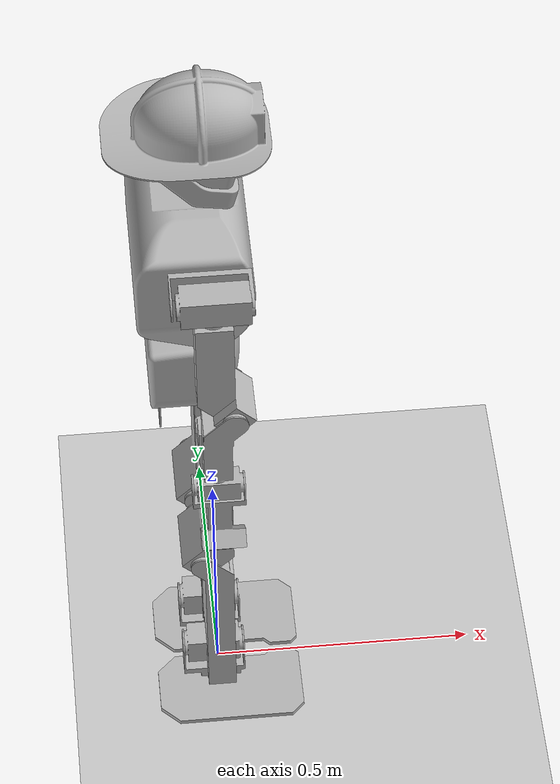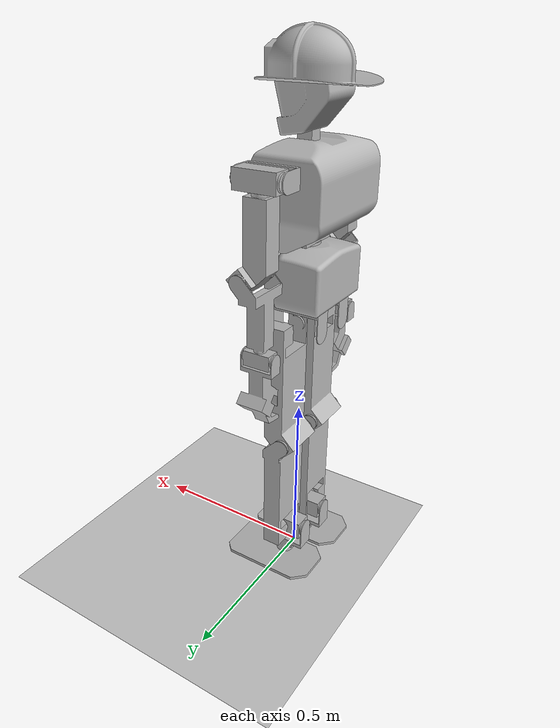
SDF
<?xml version="1.0" ?>
<sdf version="1.4">
<world name="default">

<plugin name="gz_world_manager" filename="libgz_world_manager.so" />

<physics type="ode">
	<gravity>0 0 -9.81</gravity>
	<ode>
		<solver>
			<type>quick</type>
			<iters>90</iters>
			<sor>1.2</sor>
		</solver>
		<constraints>
			<cfm>0.0</cfm>
			<erp>0.2</erp>
			<contact_max_correcting_vel>100.0</contact_max_correcting_vel>
			<contact_surface_layer>0.0</contact_surface_layer>
		</constraints>
	</ode>
	<real_time_update_rate>-1</real_time_update_rate>
	<max_step_size>0.000334</max_step_size>
</physics>

<!-- A ground plane -->
<include>
  <uri>model://ground_plane</uri>
</include>

<!-- A global light source -->
<include>
  <uri>model://sun</uri>
</include>

<include>
  <uri>model://thor_op</uri>
</include>

</world>
</sdf>

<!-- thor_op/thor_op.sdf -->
<!-- THOR-OP model script -->
<sdf version="1.4">
    <model name="thor_op">
        <plugin name="gz_comms_manager" filename="libgz_comms_manager.so" />

        <!-- head -->
        <link name="head">
            <pose>0 0 1.419 0 0 0</pose>
            <inertial>
                <mass>0.1</mass>
                <inertia>
                    <ixx>1.0</ixx>
                    <ixy>0.0</ixy>
                    <ixz>0.0</ixz>
                    <iyy>1.0</iyy>
                    <iyz>0.0</iyz>
                    <izz>1.0</izz>
                </inertia>
            </inertial>
            <collision name="head_collision">
                <pose>0 0 0 1.57 0 -1.57</pose>
                <geometry>
                    <mesh>
                        <uri>model://thor_op/meshes/head.stl</uri>
                        <scale>0.001 0.001 0.001</scale>
                    </mesh>
                </geometry>
            </collision>
            <visual name="head_visual">
                <pose>0 0 0 1.57 0 -1.57</pose>
                <geometry>
                    <mesh>
                        <uri>model://thor_op/meshes/head.stl</uri>
                        <scale>0.001 0.001 0.001</scale>
                    </mesh>
                </geometry>
            </visual>
        </link>

        <!-- neck -->
        <link name="neck">
            <pose>0 0 1.419 0 0 0</pose>
            <inertial>
                <mass>0.1</mass>
                <inertia>
                    <ixx>1.0</ixx>
                    <ixy>0.0</ixy>
                    <ixz>0.0</ixz>
                    <iyy>1.0</iyy>
                    <iyz>0.0</iyz>
                    <izz>1.0</izz>
                </inertia>
            </inertial>
            <collision name="neck_collision">
                <pose>0 0 -0.020 -1.57 0 0</pose>
                <geometry>
                    <mesh>
                        <uri>model://thor_op/meshes/neck.stl</uri>
                        <scale>0.001 0.001 0.001</scale>
                    </mesh>
                </geometry>
            </collision>
            <visual name="neck_visual">
                <pose>0 0 -0.020 -1.57 0 0</pose>
                <geometry>
                    <mesh>
                        <uri>model://thor_op/meshes/neck.stl</uri>
                        <scale>0.001 0.001 0.001</scale>
                    </mesh>
                </geometry>
            </visual>
        </link>

        <!-- main case -->
        <link name="main_case">
            <pose>0 0 1.222 0 0 0</pose>
            <inertial>
                <mass>.1</mass>
                <inertia>
                    <ixx>1.0</ixx>
                    <ixy>0.0</ixy>
                    <ixz>0.0</ixz>
                    <iyy>1.0</iyy>
                    <iyz>0.0</iyz>
                    <izz>1.0</izz>
                </inertia>
            </inertial>
            <collision name="main_case_collision">
                <pose>0 0 0 1.57 0 1.57</pose>
                <geometry>
                    <mesh>
                        <uri>model://thor_op/meshes/chest.stl</uri>
                        <scale>0.001 0.001 0.001</scale>
                    </mesh>
                </geometry>
            </collision>
            <visual name="main_case_visual">
                <pose>0 0 0 1.57 0 1.57</pose>
                <geometry>
                    <mesh>
                        <uri>model://thor_op/meshes/chest.stl</uri>
                        <scale>0.001 0.001 0.001</scale>
                    </mesh>
                </geometry>
            </visual>
            <sensor name="lidar_sensor1" type="ray">
                <!-- Hokuyo UTM-30LX-EW -->
                <always_on>1</always_on>
                <update_rate>10</update_rate>
                <pose>.0565 0 1.277 0 0 0</pose>
                <ray>
                    <scan>
                        <horizontal>
                            <samples>1081</samples>
                            <resolution>1</resolution>
                            <min_angle>-2.35619449</min_angle>
                            <max_angle>2.35619449</max_angle>
                        </horizontal>
                    </scan>
                    <range>
                        <min>.1</min>
                        <max>30</max>
                        <resolution>.05</resolution>
                    </range>
                </ray>
                <plugin name="gz_lidar_dump" filename="libgz_lidar_dump.so" />
            </sensor>
            <sensor name="camera_sensor1" type="camera">
                <pose>0 0 0.5 0 0 1.57</pose>
                <camera>
                    <horizontal_fov>1.57</horizontal_fov>
                    <image>
                        <width>640</width>
                        <height>480</height>
                        <format>R8G8B8</format>
                    </image>
                    <clip>
                        <near>0.5</near>
                        <far>5</far>
                    </clip>
                </camera>
                <plugin name="gz_camera_dump" filename="libgz_camera_dump.so" />
                <always_on>1</always_on>
                <update_rate>10</update_rate>
            </sensor>
        </link>

        <!-- torso pitch servo -->
        <link name="torso_pitch_servo">
            <pose>0 0 1.060 0 0 0</pose>
            <inertial>
                <mass>.1</mass>
                <inertia>
                    <ixx>1.0</ixx>
                    <ixy>0.0</ixy>
                    <ixz>0.0</ixz>
                    <iyy>1.0</iyy>
                    <iyz>0.0</iyz>
                    <izz>1.0</izz>
                </inertia>
            </inertial>
            <collision name="torso_pitch_servo_collision">
                <pose>0 0 -0.038 -1.57 0 1.57</pose>
                <geometry>
                    <mesh>
                        <uri>model://thor_op/meshes/torso_pitch_servo.stl</uri>
                        <scale>0.001 0.001 0.001</scale>
                    </mesh>
                </geometry>
            </collision>
            <visual name="torso_pitch_servo_visual">
                <pose>0 0 -0.038 1.57 0 1.57</pose>
                <geometry>
                    <mesh>
                        <uri>model://thor_op/meshes/torso_pitch_servo.stl</uri>
                        <scale>0.001 0.001 0.001</scale>
                    </mesh>
                </geometry>
            </visual>
        </link>

        <!-- torso -->
        <link name="torso">
            <pose>0 0 1.022 0 0 0</pose>
            <inertial>
                <mass>.2</mass>
                <inertia>
                    <ixx>1.0</ixx>
                    <ixy>0.0</ixy>
                    <ixz>0.0</ixz>
                    <iyy>1.0</iyy>
                    <iyz>0.0</iyz>
                    <izz>1.0</izz>
                </inertia>
            </inertial>
            <collision name="torso_collision">
                <pose>0 0 -0.086 1.57 0 1.57</pose>
                <geometry>
                    <mesh>
                        <uri>model://thor_op/meshes/pelvis.stl</uri>
                        <scale>0.001 0.001 0.001</scale>
                    </mesh>
                </geometry>
            </collision>
            <visual name="torso_pelvis_visual">
                <pose>0 0 -0.086 1.57 0 1.57</pose>
                <geometry>
                    <mesh>
                        <uri>model://thor_op/meshes/pelvis.stl</uri>
                        <scale>0.001 0.001 0.001</scale>
                    </mesh>
                </geometry>
            </visual>
            <sensor name="imu_sensor" type="imu">
                <always_on>1</always_on>
                <visualize>1</visualize>
                <topic>imu_sensor</topic>
            </sensor>
        </link>

        <!-- left shoulder pitch -->
        <link name="left_shoulder_pitch">
            <pose>0 .216 1.222 0 0 0</pose>
            <inertial>
                <mass>.1</mass>
                <inertia>
                    <ixx>1.0</ixx>
                    <ixy>0.0</ixy>
                    <ixz>0.0</ixz>
                    <iyy>1.0</iyy>
                    <iyz>0.0</iyz>
                    <izz>1.0</izz>
                </inertia>
            </inertial>
            <collision name="left_shoulder_pitch_collision">
                <pose>0 -0.055 0 3.14 -1.57 0</pose>
                <geometry>
                    <mesh>
                        <uri>model://thor_op/meshes/left_shoulder_pitch.stl</uri>
                        <scale>0.001 0.001 0.001</scale>
                    </mesh>
                </geometry>
            </collision>
            <visual name="left_shoulder_pitch_visual">
                <pose>0 -0.055 0 3.14 -1.57 0</pose>
                <geometry>
                    <mesh>
                        <uri>model://thor_op/meshes/left_shoulder_pitch.stl</uri>
                        <scale>0.001 0.001 0.001</scale>
                    </mesh>
                </geometry>
            </visual>
        </link>

        <!-- right shoulder pitch -->
        <link name="right_shoulder_pitch">
            <pose>0 -.216 1.222 0 0 0</pose>
            <inertial>
                <mass>.1</mass>
                <inertia>
                    <ixx>1.0</ixx>
                    <ixy>0.0</ixy>
                    <ixz>0.0</ixz>
                    <iyy>1.0</iyy>
                    <iyz>0.0</iyz>
                    <izz>1.0</izz>
                </inertia>
            </inertial>
            <collision name="right_shoulder_pitch_collision">
                <pose>0 0.055 0 3.14 -1.57 3.14</pose>
                <geometry>
                    <mesh>
                        <uri>model://thor_op/meshes/right_shoulder_pitch.stl</uri>
                        <scale>0.001 0.001 0.001</scale>
                    </mesh>
                </geometry>
            </collision>
            <visual name="right_shoulder_pitch_visual">
                <pose>0 0.055 0 3.14 -1.57 3.14</pose>
                <geometry>
                    <mesh>
                        <uri>model://thor_op/meshes/right_shoulder_pitch.stl</uri>
                        <scale>0.001 0.001 0.001</scale>
                    </mesh>
                </geometry>
            </visual>
        </link>

        <!-- left shoulder roll -->
        <link name="left_shoulder_roll">
            <pose>0 .216 1.222 0 0 0</pose>
            <inertial>
                <mass>.1</mass>
                <inertia>
                    <ixx>1.0</ixx>
                    <ixy>0.0</ixy>
                    <ixz>0.0</ixz>
                    <iyy>1.0</iyy>
                    <iyz>0.0</iyz>
                    <izz>1.0</izz>
                </inertia>
            </inertial>
            <collision name="left_shoulder_roll_collision">
                <pose>0.030 0 0 1.57 0 1.57</pose>
                <geometry>
                    <mesh>
                        <uri>model://thor_op/meshes/left_shoulder_roll.stl</uri>
                        <scale>0.001 0.001 0.001</scale>
                    </mesh>
                </geometry>
            </collision>
            <visual name="left_shoulder_roll_visual">
                <pose>0.030 0 0 1.57 0 1.57</pose>
                <geometry>
                    <mesh>
                        <uri>model://thor_op/meshes/left_shoulder_roll.dae</uri>
                        <scale>0.001 0.001 0.001</scale>
                    </mesh>
                </geometry>
            </visual>
        </link>

        <!-- right shoulder roll -->
        <link name="right_shoulder_roll">
            <pose>0 -.216 1.222 0 0 0</pose>
            <inertial>
                <mass>.1</mass>
                <inertia>
                    <ixx>1.0</ixx>
                    <ixy>0.0</ixy>
                    <ixz>0.0</ixz>
                    <iyy>1.0</iyy>
                    <iyz>0.0</iyz>
                    <izz>1.0</izz>
                </inertia>
            </inertial>
            <collision name="right_shoulder_roll_collision">
                <pose>0.030 0 0 1.57 0 -1.57</pose>
                <geometry>
                    <mesh>
                        <uri>model://thor_op/meshes/right_shoulder_roll.stl</uri>
                        <scale>0.001 0.001 0.001</scale>
                    </mesh>
                </geometry>
            </collision>
            <visual name="right_shoulder_roll_visual">
                <pose>0.030 0 0 1.57 0 -1.57</pose>
                <geometry>
                    <mesh>
                        <uri>model://thor_op/meshes/right_shoulder_roll.stl</uri>
                        <scale>0.001 0.001 0.001</scale>
                    </mesh>
                </geometry>
            </visual>
        </link>

        <!-- left upper arm -->
        <link name="left_upper_arm">
            <pose>0 .216 1.222 0 0 0</pose>
            <inertial>
                <mass>.1</mass>
                <inertia>
                    <ixx>1.0</ixx>
                    <ixy>0.0</ixy>
                    <ixz>0.0</ixz>
                    <iyy>1.0</iyy>
                    <iyz>0.0</iyz>
                    <izz>1.0</izz>
                </inertia>
            </inertial>
            <collision name="left_upper_arm_collision">
                <pose>0 0 -.025 1.57 0 1.57</pose>
                <geometry>
                    <mesh>
                        <uri>model://thor_op/meshes/left_shoulder_yaw.stl</uri>
                        <scale>0.001 0.001 0.001</scale>
                    </mesh>
                </geometry>
            </collision>
            <visual name="left_upper_arm_visual">
                <pose>0 0 -.025 1.57 0 1.57</pose>
                <geometry>
                    <mesh>
                        <uri>model://thor_op/meshes/left_shoulder_yaw.stl</uri>
                        <scale>0.001 0.001 0.001</scale>
                    </mesh>
                </geometry>
            </visual>
        </link>

        <!-- right upper arm -->
        <link name="right_upper_arm">
            <pose>0 -.216 1.222 0 0 0</pose>
            <inertial>
                <mass>.1</mass>
                <inertia>
                    <ixx>1.0</ixx>
                    <ixy>0.0</ixy>
                    <ixz>0.0</ixz>
                    <iyy>1.0</iyy>
                    <iyz>0.0</iyz>
                    <izz>1.0</izz>
                </inertia>
            </inertial>
            <collision name="right_upper_arm_collision">
                <pose>0 0 -.025 1.57 0 -1.57</pose>
                <geometry>
                    <mesh>
                        <uri>model://thor_op/meshes/right_shoulder_yaw.stl</uri>
                        <scale>0.001 0.001 0.001</scale>
                    </mesh>
                </geometry>
            </collision>
            <visual name="right_upper_arm_visual">
                <pose>0 0 -.025 1.57 0 -1.57</pose>
                <geometry>
                    <mesh>
                        <uri>model://thor_op/meshes/right_shoulder_yaw.stl</uri>
                        <scale>0.001 0.001 0.001</scale>
                    </mesh>
                </geometry>
            </visual>
        </link>

        <!-- left lower arm -->
        <link name="left_lower_arm">
            <pose>0 .216 .976 0 0 0</pose>
            <inertial>
                <mass>.1</mass>
                <inertia>
                    <ixx>1.0</ixx>
                    <ixy>0.0</ixy>
                    <ixz>0.0</ixz>
                    <iyy>1.0</iyy>
                    <iyz>0.0</iyz>
                    <izz>1.0</izz>
                </inertia>
            </inertial>
            <collision name="left_lower_arm_collision">
                <pose>0 0 0 1.57 0 1.57</pose>
                <geometry>
                    <mesh>
                        <uri>model://thor_op/meshes/left_arm_elbow.stl</uri>
                        <scale>0.001 0.001 0.001</scale>
                    </mesh>
                </geometry>
            </collision>
            <visual name="left_lower_arm_visual">
                <pose>0 0 0 1.57 0 1.57</pose>
                <geometry>
                    <mesh>
                        <uri>model://thor_op/meshes/left_arm_elbow.stl</uri>
                        <scale>0.001 0.001 0.001</scale>
                    </mesh>
                </geometry>
            </visual>
        </link>

        <!-- right lower arm -->
        <link name="right_lower_arm">
            <pose>0 -.216 .976 0 0 0</pose>
            <inertial>
                <mass>.1</mass>
                <inertia>
                    <ixx>1.0</ixx>
                    <ixy>0.0</ixy>
                    <ixz>0.0</ixz>
                    <iyy>1.0</iyy>
                    <iyz>0.0</iyz>
                    <izz>1.0</izz>
                </inertia>
            </inertial>
            <collision name="right_lower_arm_collision">
                <pose>0 0 0 1.57 0 -1.57</pose>
                <geometry>
                    <mesh>
                        <uri>model://thor_op/meshes/right_arm_elb_mir.stl</uri>
                        <scale>0.001 0.001 0.001</scale>
                    </mesh>
                </geometry>
            </collision>
            <visual name="right_lower_arm_visual">
                <pose>0 0 0 1.57 0 -1.57</pose>
                <geometry>
                    <mesh>
                        <uri>model://thor_op/meshes/right_arm_elb_mir.stl</uri>
                        <scale>0.001 0.001 0.001</scale>
                    </mesh>
                </geometry>
            </visual>
        </link>

        <!-- left wrist -->
        <link name="left_wrist">
            <pose>0 .216 .760 0 0 0</pose>
            <inertial>
                <mass>.1</mass>
                <inertia>
                    <ixx>1.0</ixx>
                    <ixy>0.0</ixy>
                    <ixz>0.0</ixz>
                    <iyy>1.0</iyy>
                    <iyz>0.0</iyz>
                    <izz>1.0</izz>
                </inertia>
            </inertial>
            <collision name="left_wrist_collision">
                <pose>0 0 0 1.57 0 1.57</pose>
                <geometry>
                    <mesh>
                        <uri>model://thor_op/meshes/left_wrist_yaw.stl</uri>
                        <scale>0.001 0.001 0.001</scale>
                    </mesh>
                </geometry>
            </collision>
            <visual name="left_wrist_visual">
                <pose>0 0 0 1.57 0 1.57</pose>
                <geometry>
                    <mesh>
                        <uri>model://thor_op/meshes/left_wrist_yaw.stl</uri>
                        <scale>0.001 0.001 0.001</scale>
                    </mesh>
                </geometry>
            </visual>
        </link>

        <!-- right wrist -->
        <link name="right_wrist">
            <pose>0 -.216 .760 0 0 0</pose>
            <inertial>
                <mass>.1</mass>
                <inertia>
                    <ixx>1.0</ixx>
                    <ixy>0.0</ixy>
                    <ixz>0.0</ixz>
                    <iyy>1.0</iyy>
                    <iyz>0.0</iyz>
                    <izz>1.0</izz>
                </inertia>
            </inertial>
            <collision name="right_wrist_collision">
                <pose>0 0 0 1.57 0 -1.57</pose>
                <geometry>
                    <mesh>
                        <uri>model://thor_op/meshes/right_wrist_yaw.stl</uri>
                        <scale>0.001 0.001 0.001</scale>
                    </mesh>
                </geometry>
            </collision>
            <visual name="right_wrist_visual">
                <pose>0 0 0 1.57 0 -1.57</pose>
                <geometry>
                    <mesh>
                        <uri>model://thor_op/meshes/right_wrist_yaw.stl</uri>
                        <scale>0.001 0.001 0.001</scale>
                    </mesh>
                </geometry>
            </visual>
        </link>

        <!--left gripper-->
        <link name="left_gripper">
            <pose>0 .216 .760 0 0 0</pose>
            <inertial>
                <mass>.1</mass>
                <inertia>
                    <ixx>1.0</ixx>
                    <ixy>0.0</ixy>
                    <ixz>0.0</ixz>
                    <iyy>1.0</iyy>
                    <iyz>0.0</iyz>
                    <izz>1.0</izz>
                </inertia>
            </inertial>
            <collision name="left_gripper_collision">
                <pose>0 0 0 1.57 0 1.57</pose>
                <geometry>
                    <mesh>
                        <uri>model://thor_op/meshes/left_wrist_roll.stl</uri>
                        <scale>0.001 0.001 0.001</scale>
                    </mesh>
                </geometry>
            </collision>
            <visual name="left_gripper_visual">
                <pose>0 0 0 1.57 0 1.57</pose>
                <geometry>
                    <mesh>
                        <uri>model://thor_op/meshes/left_wrist_roll.stl</uri>
                        <scale>0.001 0.001 0.001</scale>
                    </mesh>
                </geometry>
            </visual>
        </link>

        <!--right gripper-->
        <link name="right_gripper">
            <pose>0 -.216 .760 0 0 0</pose>
            <inertial>
                <mass>.1</mass>
                <inertia>
                    <ixx>1.0</ixx>
                    <ixy>0.0</ixy>
                    <ixz>0.0</ixz>
                    <iyy>1.0</iyy>
                    <iyz>0.0</iyz>
                    <izz>1.0</izz>
                </inertia>
            </inertial>
            <collision name="right_gripper_collision">
                <pose>0 0 0 1.57 0 -1.57</pose>
                <geometry>
                    <mesh>
                        <uri>model://thor_op/meshes/right_wrist_roll.stl</uri>
                        <scale>0.001 0.001 0.001</scale>
                    </mesh>
                </geometry>
            </collision>
            <visual name="right_gripper_visual">
                <pose>0 0 0 1.57 0 -1.57</pose>
                <geometry>
                    <mesh>
                        <uri>model://thor_op/meshes/right_wrist_roll.stl</uri>
                        <scale>0.001 0.001 0.001</scale>
                    </mesh>
                </geometry>
            </visual>
        </link>

        <!-- left hip -->
        <link name="left_hip">
            <pose>0 .060 .790 0 0 0</pose>
            <inertial>
                <mass>.1</mass>
                <inertia>
                    <ixx>1.0</ixx>
                    <ixy>0.0</ixy>
                    <ixz>0.0</ixz>
                    <iyy>1.0</iyy>
                    <iyz>0.0</iyz>
                    <izz>1.0</izz>
                </inertia>
            </inertial>
            <collision name="left_hip_collision">
                <pose>0 0 0.065 1.57 0 1.57</pose>
                <geometry>
                    <mesh>
                        <uri>model://thor_op/meshes/leg_hip_yaw.dae</uri>
                        <scale>0.001 0.001 0.001</scale>
                    </mesh>
                </geometry>
            </collision>
            <visual name="left_hip_visual">
                <pose>0 0 0.065 1.57 0 1.57</pose>
                <geometry>
                    <mesh>
                        <uri>model://thor_op/meshes/leg_hip_yaw.dae</uri>
                        <scale>0.001 0.001 0.001</scale>
                    </mesh>
                </geometry>
            </visual>
        </link>

        <!-- right hip -->
        <link name="right_hip">
            <pose>0 -.060 .790 0 0 0</pose>
            <inertial>
                <mass>.1</mass>
                <inertia>
                    <ixx>1.0</ixx>
                    <ixy>0.0</ixy>
                    <ixz>0.0</ixz>
                    <iyy>1.0</iyy>
                    <iyz>0.0</iyz>
                    <izz>1.0</izz>
                </inertia>
            </inertial>
            <collision name="right_hip_collision">
                <pose>0 0 0.065 1.57 0 -1.57</pose>
                <geometry>
                    <mesh>
                        <uri>model://thor_op/meshes/hip_yaw_mir.stl</uri>
                        <scale>0.001 0.001 0.001</scale>
                    </mesh>
                </geometry>
            </collision>
            <visual name="right_hip_visual">
                <pose>0 0 0.065 1.57 0 -1.57</pose>
                <geometry>
                    <mesh>
                        <uri>model://thor_op/meshes/hip_yaw_mir.stl</uri>
                        <scale>0.001 0.001 0.001</scale>
                    </mesh>
                </geometry>
            </visual>
        </link>

        <!-- left thigh -->
        <link name="left_thigh">
            <pose>0 0.060 0.790 0 0 0</pose>
            <inertial>
                <mass>.6</mass>
                <inertia>
                    <ixx>1.0</ixx>
                    <ixy>0.0</ixy>
                    <ixz>0.0</ixz>
                    <iyy>1.0</iyy>
                    <iyz>0.0</iyz>
                    <izz>1.0</izz>
                </inertia>
            </inertial>
            <collision name="left_thigh_collision">
                <pose>0 0 0 1.57 0 1.57</pose>
                <geometry>
                    <mesh>
                        <uri>model://thor_op/meshes/left_leg_thigh.stl</uri>
                        <scale>0.001 0.001 0.001</scale>
                    </mesh>
                </geometry>
            </collision>
            <visual name="left_thigh_visual">
                <pose>0 0 0 1.57 0 1.57</pose>
                <geometry>
                    <mesh>
                        <uri>model://thor_op/meshes/left_leg_thigh.stl</uri>
                        <scale>0.001 0.001 0.001</scale>
                    </mesh>
                </geometry>
            </visual>
        </link>

        <!-- right thigh -->
        <link name="right_thigh">
            <pose>0 -0.060 0.790 0 0 0</pose>
            <inertial>
                <mass>.6</mass>
                <inertia>
                    <ixx>1.0</ixx>
                    <ixy>0.0</ixy>
                    <ixz>0.0</ixz>
                    <iyy>1.0</iyy>
                    <iyz>0.0</iyz>
                    <izz>1.0</izz>
                </inertia>
            </inertial>
            <collision name="right_thigh_collision">
                <pose>0 0 0 1.57 0 -1.57</pose>
                <geometry>
                    <mesh>
                        <uri>model://thor_op/meshes/right_leg_thigh.stl</uri>
                        <scale>0.001 0.001 0.001</scale>
                    </mesh>
                </geometry>
            </collision>
            <visual name="right_thigh_visual">
                <pose>0 0 0 1.57 0 -1.57</pose>
                <geometry>
                    <mesh>
                        <uri>model://thor_op/meshes/right_leg_thigh.stl</uri>
                        <scale>0.001 0.001 0.001</scale>
                    </mesh>
                </geometry>
            </visual>
        </link>

        <!-- left leg -->
        <link name="left_leg">
            <pose>0 0.060 .454 0 0 0</pose>
            <inertial>
                <mass>1.0</mass>
                <inertia>
                    <ixx>1.0</ixx>
                    <ixy>0.0</ixy>
                    <ixz>0.0</ixz>
                    <iyy>1.0</iyy>
                    <iyz>0.0</iyz>
                    <izz>1.0</izz>
                </inertia>
            </inertial>
            <collision name="left_leg_collision">
                <pose>0 0 0 1.57 0 1.57</pose>
                <geometry>
                    <mesh>
                        <uri>model://thor_op/meshes/left_leg_shin.stl</uri>
                        <scale>0.001 0.001 0.001</scale>
                    </mesh>
                </geometry>
            </collision>
            <visual name="left_leg_visual">
                <pose>0 0 0 1.57 0 1.57</pose>
                <geometry>
                    <mesh>
                        <uri>model://thor_op/meshes/left_leg_shin.stl</uri>
                        <scale>0.001 0.001 0.001</scale>
                    </mesh>
                </geometry>
            </visual>
        </link>

        <!-- right leg -->
        <link name="right_leg">
            <pose>0 -0.060 .454 0 0 0</pose>
            <inertial>
                <mass>1.0</mass>
                <inertia>
                    <ixx>1.0</ixx>
                    <ixy>0.0</ixy>
                    <ixz>0.0</ixz>
                    <iyy>1.0</iyy>
                    <iyz>0.0</iyz>
                    <izz>1.0</izz>
                </inertia>
            </inertial>
            <collision name="right_leg_collision">
                <pose>0 0 0 1.57 0 -1.57</pose>
                <geometry>
                    <mesh>
                        <uri>model://thor_op/meshes/right_leg_shin.stl</uri>
                        <scale>0.001 0.001 0.001</scale>
                    </mesh>
                </geometry>
            </collision>
            <visual name="right_leg_visual">
                <pose>0 0 0 1.57 0 -1.57</pose>
                <geometry>
                    <mesh>
                        <uri>model://thor_op/meshes/right_leg_shin.stl</uri>
                        <scale>0.001 0.001 0.001</scale>
                    </mesh>
                </geometry>
            </visual>
        </link>

        <!-- left ankle -->
        <link name="left_ankle">
            <pose>0 0.060 0.118 0 0 0</pose>
            <inertial>
                <mass>.2</mass>
                <inertia>
                    <ixx>1.0</ixx>
                    <ixy>0.0</ixy>
                    <ixz>0.0</ixz>
                    <iyy>1.0</iyy>
                    <iyz>0.0</iyz>
                    <izz>1.0</izz>
                </inertia>
            </inertial>
            <collision name="left_ankle_collision">
                <pose>0 0 0 0 1.57 0</pose>
                <geometry>
                    <mesh>
                        <uri>model://thor_op/meshes/leg_ank_roll.stl</uri>
                        <scale>0.001 0.001 0.001</scale>
                    </mesh>
                </geometry>
            </collision>
            <visual name="left_ankle_visual">
                <pose>0 0 0 0 1.57 0</pose>
                <geometry>
                    <mesh>
                        <uri>model://thor_op/meshes/leg_ank_roll.stl</uri>
                        <scale>0.001 0.001 0.001</scale>
                    </mesh>
                </geometry>
            </visual>
        </link>

        <!-- right ankle -->
        <link name="right_ankle">
            <pose>0 -0.060 0.118 0 0 0</pose>
            <inertial>
                <mass>.2</mass>
                <inertia>
                    <ixx>1.0</ixx>
                    <ixy>0.0</ixy>
                    <ixz>0.0</ixz>
                    <iyy>1.0</iyy>
                    <iyz>0.0</iyz>
                    <izz>1.0</izz>
                </inertia>
            </inertial>
            <collision name="right_ankle_collision">
                <pose>0 0 0 0 1.57 0</pose>
                <geometry>
                    <mesh>
                        <uri>model://thor_op/meshes/leg_ank_roll.stl</uri>
                        <scale>0.001 0.001 0.001</scale>
                    </mesh>
                </geometry>
            </collision>
            <visual name="right_ankle_visual">
                <pose>0 0 0 0 1.57 0</pose>
                <geometry>
                    <mesh>
                        <uri>model://thor_op/meshes/leg_ank_roll.stl</uri>
                        <scale>0.001 0.001 0.001</scale>
                    </mesh>
                </geometry>
            </visual>
        </link>

        <!-- left foot -->
        <link name="l_foot">
            <pose>0 0.060 0.118 0 0 0</pose>
            <inertial>
                <mass>1.5</mass>
                <inertia>
                    <ixx>1.0</ixx>
                    <ixy>0.0</ixy>
                    <ixz>0.0</ixz>
                    <iyy>1.0</iyy>
                    <iyz>0.0</iyz>
                    <izz>1.0</izz>
                </inertia>
            </inertial>
            <collision name="l_foot_collision">
                <pose>0 0 0 1.57 0 1.57</pose>
                <geometry>
                    <mesh>
                        <uri>model://thor_op/meshes/left_leg_foot.stl</uri>
                        <scale>0.001 0.001 0.001</scale>
                    </mesh>
                </geometry>
                <!-- From atlas model -->
                <surface>
                    <friction>
                        <ode>
                            <mu>0.9</mu>
                            <mu2>0.9</mu2>
                            <fdir1>1 0 0</fdir1>
                        </ode>
                    </friction>
                    <contact>
                        <ode>
                            <max_vel>1.0</max_vel>
                            <min_depth>0.003</min_depth>
                        </ode>
                    </contact>
                </surface>
            </collision>
            <visual name="l_foot_visual">
                <pose>0 0 0 1.57 0 1.57</pose>
                <geometry>
                    <mesh>
                        <uri>model://thor_op/meshes/left_leg_foot.stl</uri>
                        <scale>0.001 0.001 0.001</scale>
                    </mesh>
                </geometry>
            </visual>
            <sensor name="l_foot_contact_sensor" type="contact">
                <always_on>1</always_on>
                <contact>
                    <collision>l_foot_collision</collision>
                </contact>
            </sensor>
        </link>

        <!-- right foot -->
        <link name="r_foot">
            <pose>0 -0.060 0.118 0 0 0</pose>
            <inertial>
                <mass>1.5</mass>
                <inertia>
                    <ixx>1.0</ixx>
                    <ixy>0.0</ixy>
                    <ixz>0.0</ixz>
                    <iyy>1.0</iyy>
                    <iyz>0.0</iyz>
                    <izz>1.0</izz>
                </inertia>
            </inertial>
            <collision name="r_foot_collision">
                <pose>0 0 0 1.57 0 -1.57</pose>
                <geometry>
                    <mesh>
                        <uri>model://thor_op/meshes/right_leg_foot.stl</uri>
                        <scale>0.001 0.001 0.001</scale>
                    </mesh>
                </geometry>
                <!-- From atlas model -->
                <surface>
                    <friction>
                        <ode>
                            <mu>0.9</mu>
                            <mu2>0.9</mu2>
                            <fdir1>1 0 0</fdir1>
                        </ode>
                    </friction>
                    <contact>
                        <ode>
                            <max_vel>1.0</max_vel>
                            <min_depth>0.003</min_depth>
                        </ode>
                    </contact>
                </surface>
            </collision>
            <visual name="r_foot_visual">
                <pose>0 0 0 1.57 0 -1.57</pose>
                <geometry>
                    <mesh>
                        <uri>model://thor_op/meshes/right_leg_foot.stl</uri>
                        <scale>0.001 0.001 0.001</scale>
                    </mesh>
                </geometry>
            </visual>
            <sensor name="r_foot_contact_sensor" type="contact">
                <always_on>1</always_on>
                <contact>
                    <collision>r_foot_collision</collision>
                </contact>
            </sensor>
        </link>

        <joint name="head_yaw" type="revolute">
            <pose>0 0 0 0 0 0</pose>
            <axis>
                <xyz>0 0 1</xyz>
                <limit>
                    <effort>40</effort>
                </limit>
                <dynamics>
                    <damping>1.0</damping>
                    <friction>0</friction>
                </dynamics>
            </axis>
            <physics>
                <ode>
                    <cfm_damping>1</cfm_damping>
                </ode>
            </physics>
            <parent>main_case</parent>
            <child>neck</child>
        </joint>
        <joint name="head_pitch" type="revolute">
            <pose>0 0 0 0 0 0</pose>
            <axis>
                <xyz>0 1 0</xyz>
                <limit>
                    <effort>40</effort>
                </limit>
                <dynamics>
                    <damping>1.0</damping>
                    <friction>0</friction>
                </dynamics>
            </axis>
            <physics>
                <ode>
                    <cfm_damping>1</cfm_damping>
                </ode>
            </physics>
            <parent>neck</parent>
            <child>head</child>
        </joint>
        <joint name="waist_pitch" type="revolute">
            <pose>0 0 0 0 0 0</pose>
            <axis>
                <xyz>0 1 0</xyz>
                <limit>
                    <effort>200</effort>
                </limit>
                <dynamics>
                    <damping>1.0</damping>
                    <friction>0</friction>
                </dynamics>
            </axis>
            <physics>
                <ode>
                    <cfm_damping>1</cfm_damping>
                </ode>
            </physics>
            <parent>main_case</parent>
            <child>torso_pitch_servo</child>
        </joint>
        <joint name="waist_yaw" type="revolute">
            <pose>0 0 0 0 0 0</pose>
            <axis>
                <xyz>0 0 1</xyz>
                <limit>
                    <effort>200</effort>
                </limit>
                <dynamics>
                    <damping>1.0</damping>
                    <friction>0</friction>
                </dynamics>
            </axis>
            <physics>
                <ode>
                    <cfm_damping>1</cfm_damping>
                </ode>
            </physics>
            <parent>
                torso_pitch_servo
            </parent>
            <child>
                torso
            </child>
        </joint>
        <joint name="l_shoulder_pitch" type="revolute">
            <pose>0 0 0 0 0 0</pose>
            <axis>
                <xyz>0 1 0</xyz>
                <limit>
                    <effort>100</effort>
                </limit>
                <dynamics>
                    <damping>1.0</damping>
                    <friction>0</friction>
                </dynamics>
            </axis>
            <physics>
                <ode>
                    <cfm_damping>1</cfm_damping>
                </ode>
            </physics>
            <parent>
                main_case
            </parent>
            <child>
                left_shoulder_pitch
            </child>
        </joint>
        <joint name="r_shoulder_pitch" type="revolute">
            <pose>0 0 0 0 0 0</pose>
            <axis>
                <xyz>0 1 0</xyz>
                <limit>
                    <effort>100</effort>
                </limit>
                <dynamics>
                    <damping>1.0</damping>
                    <friction>0</friction>
                </dynamics>
            </axis>
            <physics>
                <ode>
                    <cfm_damping>1</cfm_damping>
                </ode>
            </physics>
            <parent>
                main_case
            </parent>
            <child>
                right_shoulder_pitch
            </child>
        </joint>
        <joint name="l_shoulder_roll" type="revolute">
            <pose>0 0 0 0 0 0</pose>
            <axis>
                <xyz>1 0 0</xyz>
                <limit>
                    <effort>100</effort>
                </limit>
                <dynamics>
                    <damping>1.0</damping>
                    <friction>0</friction>
                </dynamics>
            </axis>
            <physics>
                <ode>
                    <cfm_damping>1</cfm_damping>
                </ode>
            </physics>
            <parent>
                left_shoulder_pitch
            </parent>
            <child>
                left_shoulder_roll
            </child>
        </joint>
        <joint name="r_shoulder_roll" type="revolute">
            <pose>0 0 0 0 0 0</pose>
            <axis>
                <xyz>1 0 0</xyz>
                <limit>
                    <effort>100</effort>
                </limit>
                <dynamics>
                    <damping>1.0</damping>
                    <friction>0</friction>
                </dynamics>
            </axis>
            <physics>
                <ode>
                    <cfm_damping>1</cfm_damping>
                </ode>
            </physics>
            <parent>
                right_shoulder_pitch
            </parent>
            <child>
                right_shoulder_roll
            </child>
        </joint>
        <joint name="l_shoulder_yaw" type="revolute">
            <pose>0 0 0 0 0 0</pose>
            <axis>
                <xyz>0 0 1</xyz>
                <limit>
                    <effort>100</effort>
                </limit>
                <dynamics>
                    <damping>1.0</damping>
                    <friction>0</friction>
                </dynamics>
            </axis>
            <physics>
                <ode>
                    <cfm_damping>1</cfm_damping>
                </ode>
            </physics>
            <parent>
                left_shoulder_roll
            </parent>
            <child>
                left_upper_arm
            </child>
        </joint>
        <joint name="r_shoulder_yaw" type="revolute">
            <pose>0 0 0 0 0 0</pose>
            <axis>
                <xyz>0 0 1</xyz>
                <limit>
                    <effort>100</effort>
                </limit>
                <dynamics>
                    <damping>1.0</damping>
                    <friction>0</friction>
                </dynamics>
            </axis>
            <physics>
                <ode>
                    <cfm_damping>1</cfm_damping>
                </ode>
            </physics>
            <parent>
                right_shoulder_roll
            </parent>
            <child>
                right_upper_arm
            </child>
        </joint>
        <joint name="l_elbow_pitch" type="revolute">
            <pose>.030 0 0 0 0 0</pose>
            <axis>
                <xyz>0 1 0</xyz>
                <limit>
                    <effort>100</effort>
                </limit>
                <dynamics>
                    <damping>1.0</damping>
                    <friction>0</friction>
                </dynamics>
            </axis>
            <physics>
                <ode>
                    <cfm_damping>1</cfm_damping>
                </ode>
            </physics>
            <parent>
                left_upper_arm
            </parent>
            <child>
                left_lower_arm
            </child>
        </joint>
        <joint name="r_elbow_pitch" type="revolute">
            <pose>.030 0 0 0 0 0</pose>
            <axis>
                <xyz>0 1 0</xyz>
                <limit>
                    <effort>100</effort>
                </limit>
                <dynamics>
                    <damping>1.0</damping>
                    <friction>0</friction>
                </dynamics>
            </axis>
            <physics>
                <ode>
                    <cfm_damping>1</cfm_damping>
                </ode>
            </physics>
            <parent>
                right_upper_arm
            </parent>
            <child>
                right_lower_arm
            </child>
        </joint>
        <joint name="l_wrist_yaw" type="revolute">
            <pose>0 0 0 0 0 0</pose>
            <axis>
                <xyz>0 0 1</xyz>
                <limit>
                    <effort>40</effort>
                </limit>
                <dynamics>
                    <damping>1.0</damping>
                    <friction>0</friction>
                </dynamics>
            </axis>
            <physics>
                <ode>
                    <cfm_damping>1</cfm_damping>
                </ode>
            </physics>
            <parent>
                left_lower_arm
            </parent>
            <child>
                left_wrist
            </child>
        </joint>
        <joint name="r_wrist_yaw" type="revolute">
            <pose>0 0 0 0 0 0</pose>
            <axis>
                <xyz>0 0 1</xyz>
                <limit>
                    <effort>40</effort>
                </limit>
                <dynamics>
                    <damping>1.0</damping>
                    <friction>0</friction>
                </dynamics>
            </axis>
            <physics>
                <ode>
                    <cfm_damping>1</cfm_damping>
                </ode>
            </physics>
            <parent>
                right_lower_arm
            </parent>
            <child>
                right_wrist
            </child>
        </joint>
        <joint name="l_wrist_roll" type="revolute">
            <pose>0 0 0 0 0 0</pose>
            <axis>
                <xyz>1 0 0</xyz>
                <limit>
                    <effort>40</effort>
                </limit>
                <dynamics>
                    <damping>1.0</damping>
                    <friction>0</friction>
                </dynamics>
            </axis>
            <physics>
                <ode>
                    <provide_feedback>1</provide_feedback>
                    <cfm_damping>1</cfm_damping>
                </ode>
            </physics>
            <parent>
                left_wrist
            </parent>
            <child>
                left_gripper
            </child>
        </joint>
        <joint name="r_wrist_roll" type="revolute">
            <pose>0 0 0 0 0 0</pose>
            <axis>
                <xyz>1 0 0</xyz>
                <limit>
                    <effort>40</effort>
                </limit>
                <dynamics>
                    <damping>1.0</damping>
                    <friction>0</friction>
                </dynamics>
            </axis>
            <physics>
                <ode>
                    <provide_feedback>1</provide_feedback>
                    <cfm_damping>1</cfm_damping>
                </ode>
            </physics>
            <parent>
                right_wrist
            </parent>
            <child>
                right_gripper
            </child>
        </joint>
        <joint name="l_hip_yaw" type="revolute">
            <pose>0 0 0 0 0 0</pose>
            <axis>
                <xyz>0 0 1</xyz>
                <limit>
                    <effort>100</effort>
                </limit>
                <dynamics>
                    <damping>1.0</damping>
                    <friction>0</friction>
                </dynamics>
            </axis>
            <physics>
                <ode>
                    <cfm_damping>1</cfm_damping>
                </ode>
            </physics>
            <parent>
                torso
            </parent>
            <child>
                left_hip
            </child>
        </joint>
        <joint name="r_hip_yaw" type="revolute">
            <pose>0 0 0 0 0 0</pose>
            <axis>
                <xyz>0 0 1</xyz>
                <limit>
                    <effort>100</effort>
                </limit>
                <dynamics>
                    <damping>1.0</damping>
                    <friction>0</friction>
                </dynamics>
            </axis>
            <physics>
                <ode>
                    <cfm_damping>1</cfm_damping>
                </ode>
            </physics>
            <parent>
                torso
            </parent>
            <child>
                right_hip
            </child>
        </joint>
        <joint name="l_hip_roll" type="revolute">
            <pose>0 0 0 0 0 0</pose>
            <axis>
                <xyz>1 0 0</xyz>
                <limit>
                    <effort>100</effort>
                </limit>
                <dynamics>
                    <damping>1.0</damping>
                    <friction>0</friction>
                </dynamics>
            </axis>
            <physics>
                <ode>
                    <cfm_damping>1</cfm_damping>
                </ode>
            </physics>
            <parent>
                torso
            </parent>
            <child>
                left_hip
            </child>
        </joint>
        <joint name="r_hip_roll" type="revolute">
            <pose>0 0 0 0 0 0</pose>
            <axis>
                <xyz>1 0 0</xyz>
                <limit>
                    <effort>100</effort>
                </limit>
                <dynamics>
                    <damping>1.0</damping>
                    <friction>0</friction>
                </dynamics>
            </axis>
            <physics>
                <ode>
                    <cfm_damping>1</cfm_damping>
                </ode>
            </physics>
            <parent>
                torso
            </parent>
            <child>
                right_hip
            </child>
        </joint>
        <joint name="l_hip_pitch" type="revolute">
            <pose>0 0 0 0 0 0</pose>
            <axis>
                <xyz>0 1 0</xyz>
                <limit>
                    <effort>200</effort>
                </limit>
                <dynamics>
                    <damping>1.0</damping>
                    <friction>0</friction>
                </dynamics>
            </axis>
            <physics>
                <ode>
                    <cfm_damping>1</cfm_damping>
                </ode>
            </physics>
            <parent>
                left_hip
            </parent>
            <child>
                left_thigh
            </child>
        </joint>
        <joint name="r_hip_pitch" type="revolute">
            <pose>0 0 0 0 0 0</pose>
            <axis>
                <xyz>0 1 0</xyz>
                <limit>
                    <effort>200</effort>
                </limit>
                <dynamics>
                    <damping>1.0</damping>
                    <friction>0</friction>
                </dynamics>
            </axis>
            <physics>
                <ode>
                    <cfm_damping>1</cfm_damping>
                </ode>
            </physics>
            <parent>
                right_hip
            </parent>
            <child>
                right_thigh
            </child>
        </joint>
        <joint name="l_knee_pitch" type="revolute">
            <pose>-.030 0 0 0 0 0</pose>
            <axis>
                <xyz>0 1 0</xyz>
                <limit>
                    <effort>200</effort>
                </limit>
                <dynamics>
                    <damping>1.0</damping>
                    <friction>0</friction>
                </dynamics>
            </axis>
            <physics>
                <ode>
                    <cfm_damping>1</cfm_damping>
                </ode>
            </physics>
            <parent>
                left_thigh
            </parent>
            <child>
                left_leg
            </child>
        </joint>
        <joint name="r_knee_pitch" type="revolute">
            <pose>-.030 0 0 0 0 0</pose>
            <axis>
                <xyz>0 1 0</xyz>
                <limit>
                    <effort>200</effort>
                </limit>
                <dynamics>
                    <damping>1.0</damping>
                    <friction>0</friction>
                </dynamics>
            </axis>
            <physics>
                <ode>
                    <cfm_damping>1</cfm_damping>
                </ode>
            </physics>
            <parent>
                right_thigh
            </parent>
            <child>
                right_leg
            </child>
        </joint>
        <joint name="l_ankle_pitch" type="revolute">
            <pose>0 0 0 0 0 0</pose>
            <axis>
                <xyz>0 1 0</xyz>
                <limit>
                    <effort>200</effort>
                </limit>
                <dynamics>
                    <damping>1.0</damping>
                    <friction>0</friction>
                </dynamics>
            </axis>
            <physics>
                <ode>
                    <cfm_damping>1</cfm_damping>
                </ode>
            </physics>
            <parent>
                left_leg
            </parent>
            <child>
                left_ankle
            </child>
        </joint>
        <joint name="r_ankle_pitch" type="revolute">
            <pose>0 0 0 0 0 0</pose>
            <axis>
                <xyz>0 1 0</xyz>
                <limit>
                    <effort>200</effort>
                </limit>
                <dynamics>
                    <damping>1.0</damping>
                    <friction>0</friction>
                </dynamics>
            </axis>
            <physics>
                <ode>
                    <cfm_damping>1</cfm_damping>
                </ode>
            </physics>
            <parent>
                right_leg
            </parent>
            <child>
                right_ankle
            </child>
        </joint>
        <joint name="l_ankle_roll" type="revolute">
            <pose>0 0 0 0 0 0</pose>
            <axis>
                <xyz>1 0 0</xyz>
                <limit>
                    <effort>100</effort>
                </limit>
                <dynamics>
                    <damping>1.0</damping>
                    <friction>0</friction>
                </dynamics>
            </axis>
            <physics>
                <ode>
                    <provide_feedback>1</provide_feedback>
                    <cfm_damping>1</cfm_damping>
                </ode>
            </physics>
            <parent>
                left_ankle
            </parent>
            <child>
                l_foot
            </child>
        </joint>
        <joint name="r_ankle_roll" type="revolute">
            <pose>0 0 0 0 0 0</pose>
            <axis>
                <xyz>1 0 0</xyz>
                <limit>
                    <effort>100</effort>
                </limit>
                <dynamics>
                    <damping>1.0</damping>
                    <friction>0</friction>
                </dynamics>
            </axis>
            <physics>
                <ode>
                    <provide_feedback>1</provide_feedback>
                    <cfm_damping>1</cfm_damping>
                </ode>
            </physics>
            <parent>
                right_ankle
            </parent>
            <child>
                r_foot
            </child>
        </joint>

    </model>

</sdf>
